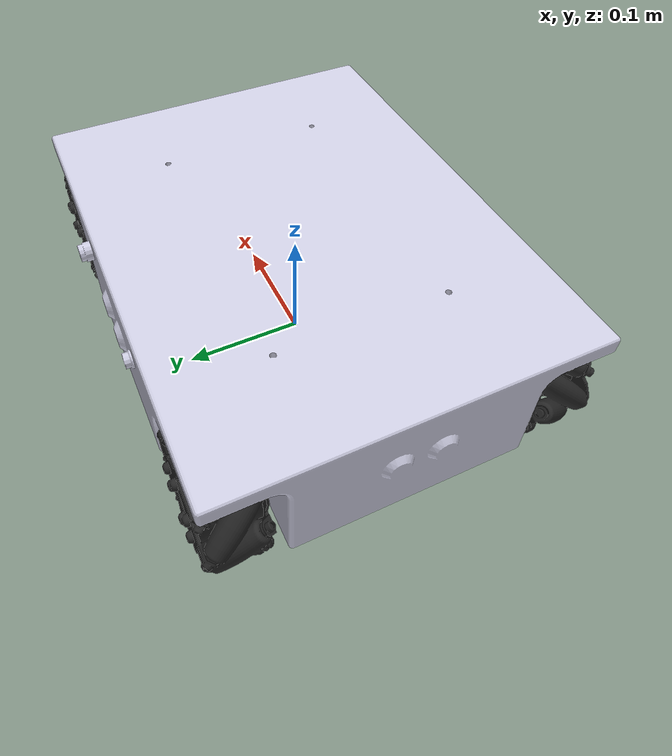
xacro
<?xml version="1.0" encoding="utf-8"?>
<robot xmlns:xacro="http://ros.org/wiki/xacro">

<xacro:include filename="$(find kr003_description)/urdf/robot.common.xacro"/>
<xacro:include filename="$(find kr003_description)/urdf/robot.control.xacro"/>

<xacro:property name="mesh_path" value="package://kr003_description/meshes/"/>

<!-- **** LINKS **** -->

<!-- BASE_FOOTPRINT -->
<link name="base_footprint"/>

<!-- BASE_LINK -->
<link name="base_link">
  <visual>
    <origin xyz="0 0 0" rpy="0 0 0" />
    <geometry>
      <mesh filename="${mesh_path}rover.stl" />
    </geometry>
    <material name="lightgrey"/>
  </visual>
  <collision>
    <origin xyz="0 0 ${-base_height/2}" rpy="0 0 0" />
    <geometry>
      <box size="${base_length} ${base_width} ${base_height}"/>
    </geometry>
  </collision>
</link>

<!-- BASE_LINK_INERTIAL (WORKAROUND FOR KDL WHICH DOES NOT ACCEPT BASE_LINK WITH INERTIA) -->
<link name="base_link_inertial">
  <inertial>
    <origin xyz="0 0 0" rpy="0 0 0" />
    <mass value="${base_mass}"/>
    <xacro:box_inertia m="${base_mass}" x="${base_length}" y="${base_width}" z="${base_height}"/>
  </inertial>
</link>

<!-- WHEEL LEFT FRONT -->
<link name="wheel_lf">
  <inertial>
    <mass value="${wheel_mass}"/>
    <xacro:cylinder_inertia m="${wheel_mass}" r="${wheel_radius}" h="${wheel_thickness}"/>
  </inertial>
  <visual>
    <origin xyz="0 0 0" rpy="${pi_by_two} 0 0" />
    <geometry>
      <mesh filename="${mesh_path}wheel_lf.stl" />
    </geometry>
    <material name="darkgreyrover"/>
  </visual>
  <collision>
    <origin xyz="0 ${wheel_thickness/2} 0" rpy="${pi_by_two} 0 0" />
    <geometry>
      <cylinder length="${wheel_thickness}" radius="${wheel_radius}"/>
    </geometry>
  </collision>
</link>

<!-- WHEEL LEFT BACK -->
<link name="wheel_lb">
  <inertial>
    <mass value="${wheel_mass}"/>
    <xacro:cylinder_inertia m="${wheel_mass}" r="${wheel_radius}" h="${wheel_thickness}"/>
  </inertial>
  <visual>
    <origin xyz="0 0 0" rpy="${pi_by_two} 0 0" />
    <geometry>
      <mesh filename="${mesh_path}wheel_lb.stl" />
    </geometry>
    <material name="darkgreyrover"/>
  </visual>
  <collision>
    <origin xyz="0 ${wheel_thickness/2} 0" rpy="${pi_by_two} 0 0" />
    <geometry>
      <cylinder length="${wheel_thickness}" radius="${wheel_radius}"/>
    </geometry>
  </collision>
</link>

<!-- WHEEL RIGHT FRONT -->
<link name="wheel_rf">
  <inertial>
    <mass value="${wheel_mass}"/>
    <xacro:cylinder_inertia m="${wheel_mass}" r="${wheel_radius}" h="${wheel_thickness}"/>
  </inertial>
  <visual>
    <origin xyz="0 0 0" rpy="-${pi_by_two} 0 0" />
    <geometry>
      <mesh filename="${mesh_path}wheel_rf.stl" />
    </geometry>
    <material name="darkgreyrover"/>
  </visual>
  <collision>
    <origin xyz="0 ${-1*(wheel_thickness/2)} 0" rpy="-${pi_by_two} 0 0" />
    <geometry>
      <cylinder length="${wheel_thickness}" radius="${wheel_radius}"/>
    </geometry>
  </collision>
</link>

<!-- WHEEL RIGHT BACK -->
<link name="wheel_rb">
  <inertial>
    <mass value="${wheel_mass}"/>
    <xacro:cylinder_inertia m="${wheel_mass}" r="${wheel_radius}" h="${wheel_thickness}"/>
  </inertial>
  <visual>
    <origin xyz="0 0 0" rpy="-${pi_by_two} 0 0" />
    <geometry>
      <mesh filename="${mesh_path}wheel_rb.stl" />
    </geometry>
    <material name="darkgreyrover"/>
  </visual>
  <collision>
    <origin xyz="0 ${-1*(wheel_thickness/2)} 0" rpy="-${pi_by_two} 0 0" />
    <geometry>
      <cylinder length="${wheel_thickness}" radius="${wheel_radius}"/>
    </geometry>
  </collision>
</link>

<!-- **** JOINTS **** -->

<!-- BASE_LINK TO BASE_FOOTPRINT -->
<joint name="base_footprint_fixed" type="fixed">
  <parent link="base_footprint"/>
  <child link="base_link"/>
  <origin xyz="0 0 ${-footprint_offset_z}"/>
</joint>

<!-- BASE_LINK_INERTIAL TO BASE_LINK -->
<joint name="base_inertial_fixed" type="fixed">
  <parent link="base_link"/>
  <child link="base_link_inertial"/>
  <origin xyz="0 0 0"/>
</joint>

<!-- WHEEL_LF TO BASE_LINK -->
<joint name="joint_lf" type="continuous">
  <parent link="base_link" />
  <child link="wheel_lf" />
  <origin xyz="${joint_offset_x} ${joint_offset_y} ${joint_offset_z}" rpy="0 0 0" />
  <axis xyz="0 1 0" />
</joint>

<!-- WHEEL_LB TO BASE_LINK -->
<joint name="joint_lb" type="continuous">
  <parent link="base_link" />
  <child link="wheel_lb" />
  <origin xyz="-${joint_offset_x} ${joint_offset_y} ${joint_offset_z}" rpy="0 0 0" />
  <axis xyz="0 1 0" />
</joint>

<!-- WHEEL_RF TO BASE_LINK -->
<joint name="joint_rf" type="continuous">
  <parent link="base_link" />
  <child link="wheel_rf" />
  <origin xyz="${joint_offset_x} -${joint_offset_y} ${joint_offset_z}" rpy="0 0 0" />
  <axis xyz="0 1 0" />
</joint>

<!-- WHEEL_RB TO BASE_LINK -->
<joint name="joint_rb" type="continuous">
  <parent link="base_link" />
  <child link="wheel_rb" />
  <origin xyz="-${joint_offset_x} -${joint_offset_y} ${joint_offset_z}" rpy="0 0 0" />
  <axis xyz="0 1 0" />
</joint>

</robot>

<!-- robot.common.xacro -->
<robot xmlns:xacro="http://ros.org/wiki/xacro">

<xacro:property name="pi_by_two" value="1.5707963" />

<xacro:property name="base_mass" value="2.0" /> <!-- Guesstimate, needs to be measured -->
<xacro:property name="base_length" value="0.4" />
<xacro:property name="base_width" value="0.307" />
<xacro:property name="base_height" value="0.102" />
<xacro:property name="footprint_offset_z" value="-0.125" /> <!-- offset from base_link to base_footprint -->

<xacro:property name="pi_base_mass" value="0.1" /> <!-- Guesstimate, needs to be measured -->
<xacro:property name="pi_base_length" value="0.14" />
<xacro:property name="pi_base_width" value="0.1499" />
<xacro:property name="pi_base_height" value="0.08" />
<xacro:property name="pi_base_offset_x" value="-0.111" />
<xacro:property name="imu_offset_z" value="0.02" />

<xacro:property name="laser_mass" value="0.19" />
<xacro:property name="laser_radius" value="0.0378" />
<xacro:property name="laser_height" value="0.0413" />
<xacro:property name="laser_offset_z" value="0.08" />
<xacro:property name="laser_optical_offset_z" value="0.0308" />

<xacro:property name="wheel_radius" value="0.05" />
<xacro:property name="wheel_mass" value="0.075" /> <!-- Guesstimate, needs to be measured -->
<xacro:property name="wheel_thickness" value="0.05"/>

<!-- offsets from base_link to joint_** -->
<xacro:property name="joint_offset_x" value="0.15" /> <!-- base_length/2 - wheel_radius -->
<xacro:property name="joint_offset_y" value="0.1035" /> <!-- base_width/2 - wheel_thickness -->
<xacro:property name="joint_offset_z" value="-0.073" /> <!-- 0 - wheel_radius - distance_to_ground-->

<xacro:macro name="cylinder_inertia" params="m r h">
  <inertia  ixx="${m*(3*r*r+h*h)/12}" ixy = "0" ixz = "0"
            iyy="${m*(3*r*r+h*h)/12}" iyz = "0"
            izz="${m*r*r/2}" />
</xacro:macro>

<xacro:macro name="box_inertia" params="m x y z">
  <inertia  ixx="${m*(y*y+z*z)/12}" ixy = "0" ixz = "0"
            iyy="${m*(x*x+z*z)/12}" iyz = "0"
            izz="${m*(x*x+z*z)/12}" />
</xacro:macro>

<xacro:macro name="sphere_inertia" params="m r">
  <inertia  ixx="${2*m*r*r/5}" ixy = "0" ixz = "0"
            iyy="${2*m*r*r/5}" iyz = "0"
            izz="${2*m*r*r/5}" />
</xacro:macro>

<!-- Color codes from https://gist.github.com/naoki-mizuno/5e63a13597d5c5fe817c1600b829595e, matches with Gazebo colors with the same name -->

<material name="lightgrey">
    <color rgba="0.8 0.8 0.88 1.0"/>
</material>

<material name="darkgreyrover">
    <color rgba="0.15 0.15 0.15 1.0"/>
</material>

</robot>
